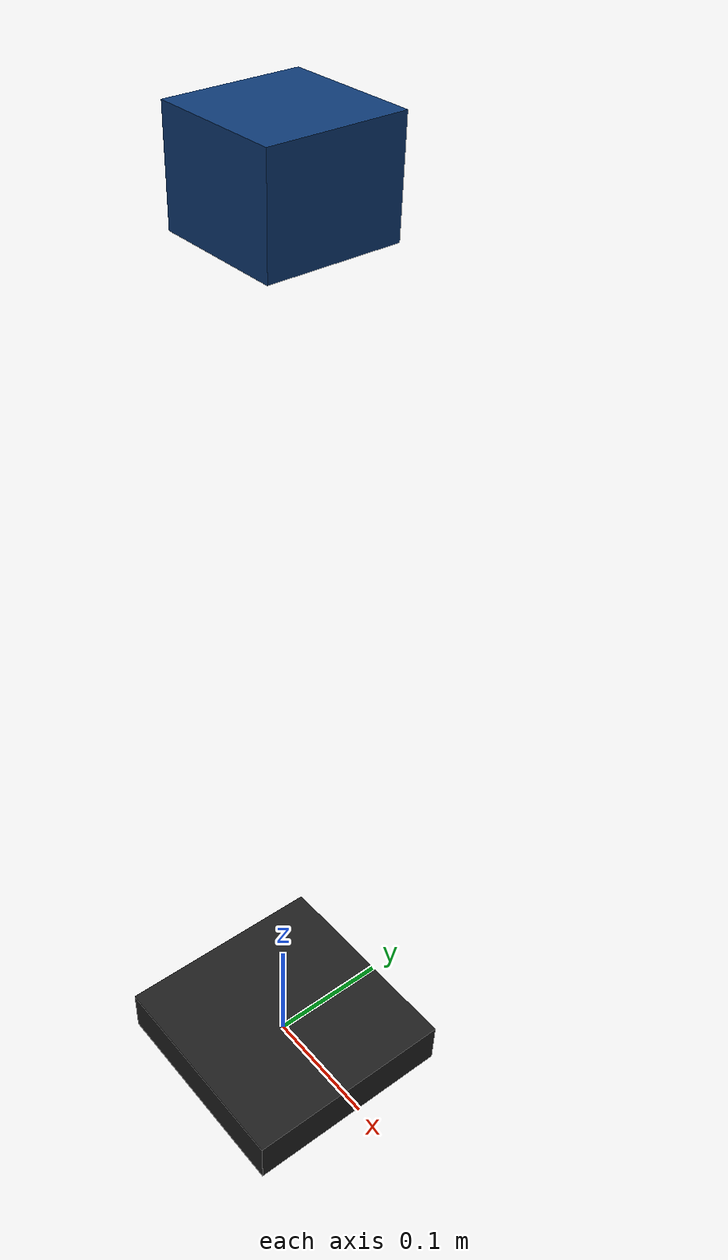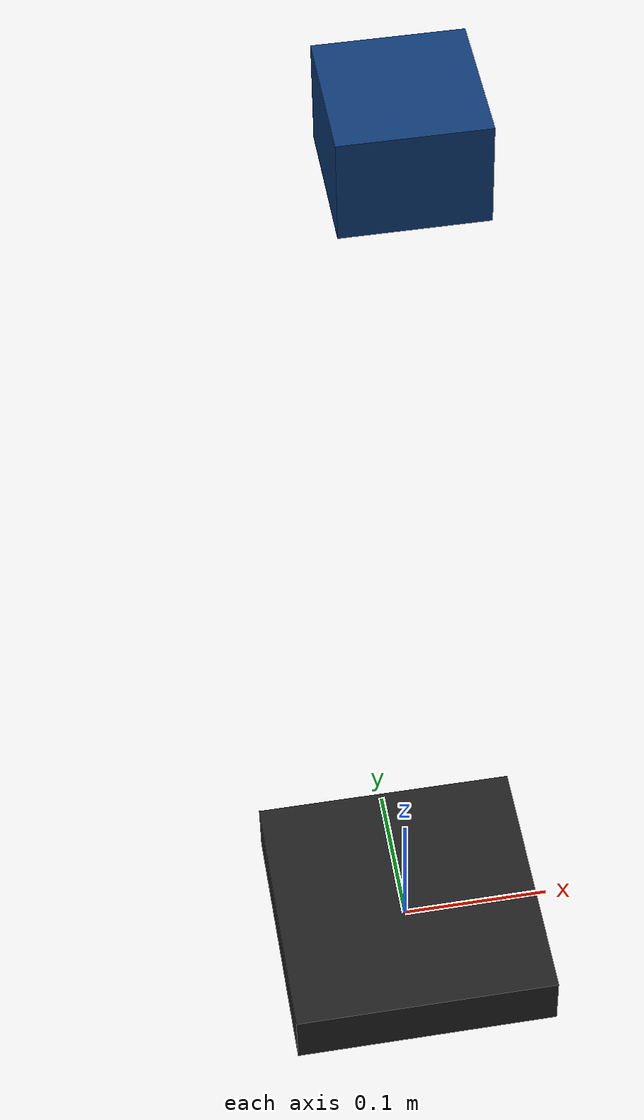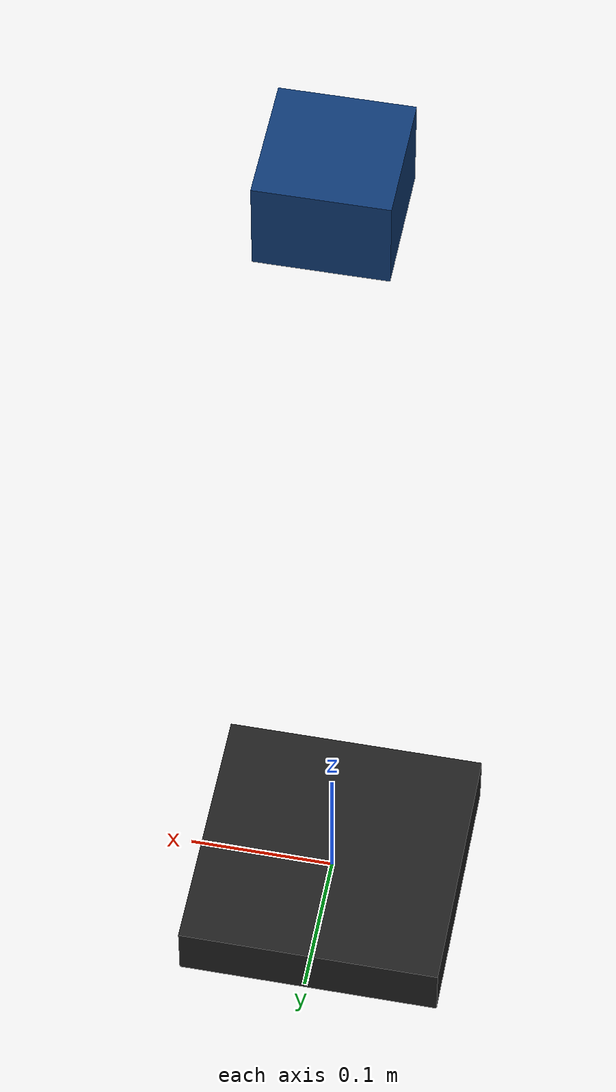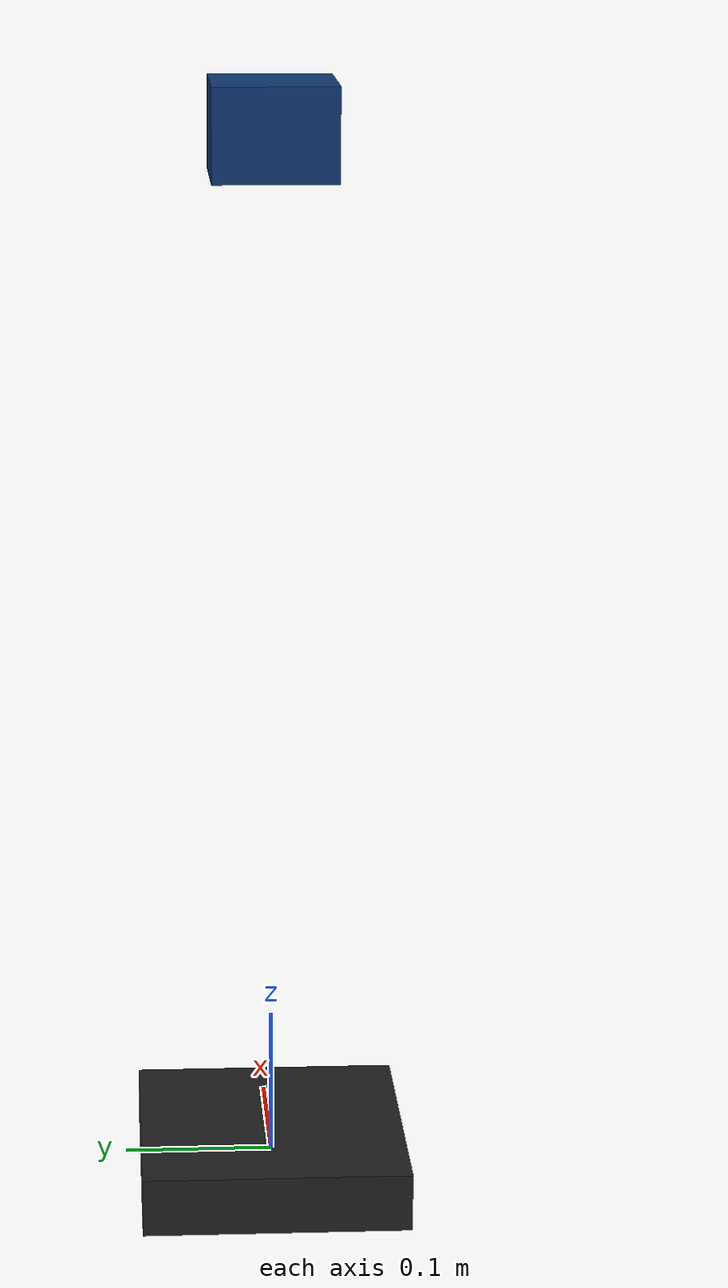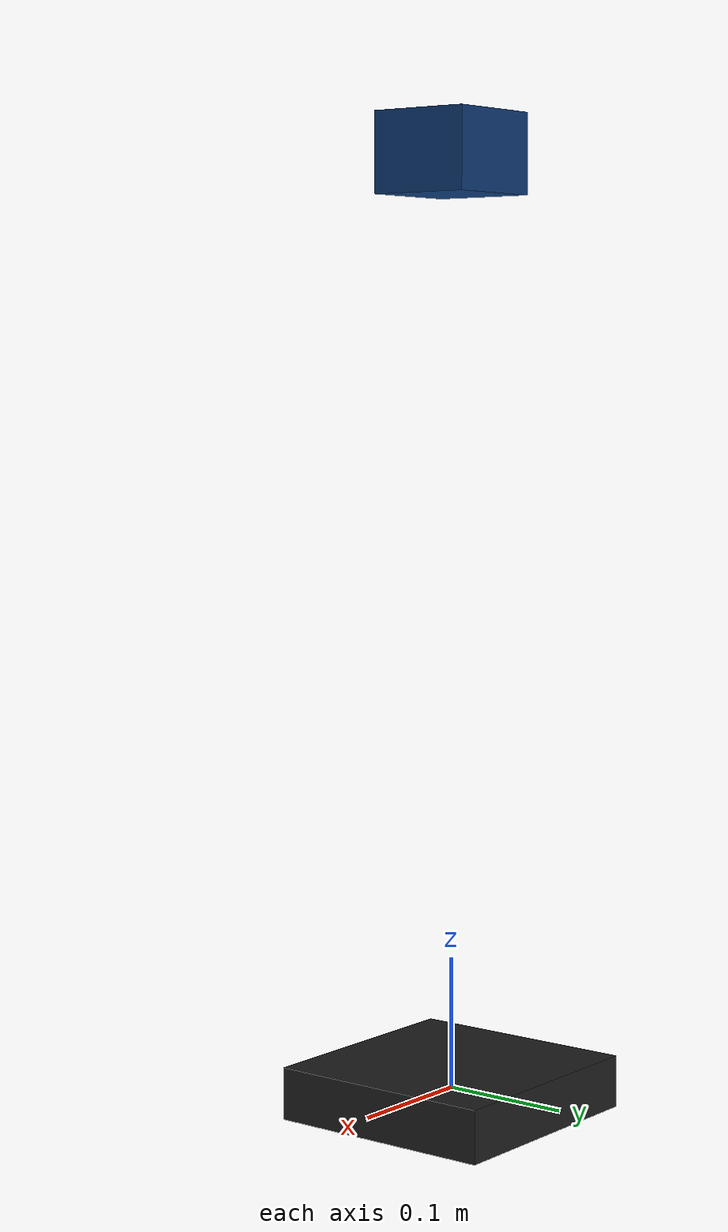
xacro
<?xml version="1.0"?>
<robot name="camera_pose_demo_rig" xmlns:xacro="http://www.ros.org/wiki/xacro">
  <link name="base_link">
    <visual>
      <geometry>
        <box size="0.18 0.18 0.04"/>
      </geometry>
      <material name="dark_gray">
        <color rgba="0.12 0.12 0.12 1"/>
      </material>
    </visual>
    <collision>
      <geometry>
        <box size="0.18 0.18 0.04"/>
      </geometry>
    </collision>
    <inertial>
      <mass value="1.0"/>
      <origin xyz="0 0 0"/>
      <inertia ixx="0.01" ixy="0" ixz="0" iyy="0.01" iyz="0" izz="0.01"/>
    </inertial>
  </link>

  <link name="camera_link">
    <visual>
      <origin xyz="0 0 0" rpy="0 0 0"/>
      <geometry>
        <box size="0.08 0.08 0.06"/>
      </geometry>
      <material name="blue">
        <color rgba="0.05 0.22 0.45 1"/>
      </material>
    </visual>
    <collision>
      <geometry>
        <box size="0.08 0.08 0.06"/>
      </geometry>
    </collision>
    <inertial>
      <mass value="0.2"/>
      <origin xyz="0 0 0"/>
      <inertia ixx="0.001" ixy="0" ixz="0" iyy="0.001" iyz="0" izz="0.001"/>
    </inertial>
  </link>

  <joint name="base_to_camera" type="fixed">
    <parent link="base_link"/>
    <child link="camera_link"/>
    <origin xyz="0 0 0.7" rpy="0 0 0"/>
  </joint>

  <gazebo reference="base_link">
    <static>true</static>
  </gazebo>

  <gazebo reference="camera_link">
    <sensor name="demo_camera" type="camera">
      <always_on>true</always_on>
      <update_rate>30</update_rate>
      <camera>
        <horizontal_fov>1.047</horizontal_fov>
        <image>
          <width>1280</width>
          <height>720</height>
          <format>R8G8B8</format>
        </image>
        <clip>
          <near>0.05</near>
          <far>20.0</far>
        </clip>
      </camera>
      <plugin name="camera_controller" filename="libgazebo_ros_camera.so">
        <ros>
          <namespace>/demo</namespace>
        </ros>
        <camera_name>camera</camera_name>
        <frame_name>camera_link</frame_name>
      </plugin>
    </sensor>
  </gazebo>
</robot>
